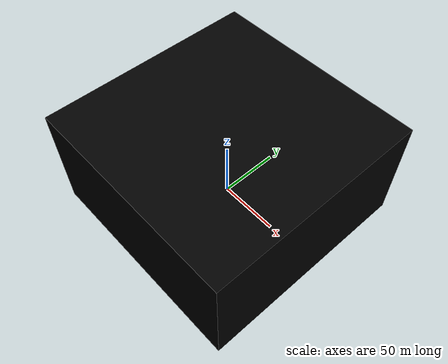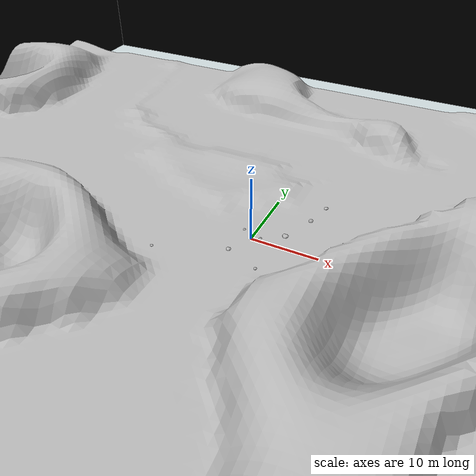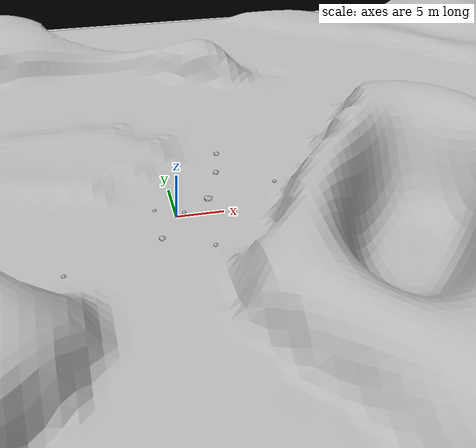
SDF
<?xml version="1.0" ?>
<sdf version='1.9'>
  <world name='lunar_landscape'>

    <scene>
        <ambient>0.4 0.4 0.4 0.4</ambient>          <!-- Has no effect -->
        <background>0.0 0.0 0.0 1.0</background>    <!-- Has no effect -->
        <shadows>1</shadows>                        <!-- Has no effect -->
        <grid>0</grid>
    </scene>

    <!-- Gravity -->
    <!-- Lowers friction and makes robot turn less good -->

    <!-- Physics -->
    <physics name="1ms" type="ignored">
        <max_step_size>0.001</max_step_size>
        <real_time_factor>1.0</real_time_factor>
    </physics>

    <!-- Plugins -->
    <plugin
        filename="gz-sim-physics-system"
        name="gz::sim::systems::Physics">
    </plugin>
    <!-- Allows to use the 'Create" service' -->
    <plugin
        filename="gz-sim-user-commands-system"
        name="gz::sim::systems::UserCommands">
    </plugin>
    <plugin
        filename="gz-sim-scene-broadcaster-system"
        name="gz::sim::systems::SceneBroadcaster">
    </plugin>

    <plugin filename="gz-sim-imu-system"
        name="gz::sim::systems::Imu">
    </plugin>

    <plugin
        filename="gz-sim-sensors-system"
        name="gz::sim::systems::Sensors">
        <render_engine>ogre2</render_engine>
    </plugin>

    <!-- Illumination -->
    <light type="directional" name="sun">
      <cast_shadows>true</cast_shadows>
      <pose>0 0 10 0.9 0 0</pose>
      <diffuse>0.8 0.8 0.8 1</diffuse>
      <specular>0.2 0.2 0.2 1</specular>
      <attenuation>
        <range>1000</range>
        <constant>0.9</constant>
        <linear>0.01</linear>
        <quadratic>0.001</quadratic>
      </attenuation>
      <direction>-0.3 0.3 -0.9</direction>
    </light>

    <!-- Models -->

    <!-- Ground -->
    <model name="lunar_ground_plane">
      <static>true</static>
      <pose>-35 5 0 0 0 0</pose>
      <link name='lunar_ground_plane'>
        <collision name="lunar_ground_plane_collision">
            <pose>0 0 0 0 0 0</pose>
            <geometry>
            <mesh>
                <scale>1 1 1</scale>
                <uri>./meshes/lunar_proto_landscape_v002_flattened.dae</uri>
            </mesh>
            </geometry>
        </collision>
        <visual name='lunar_ground_plane_visual'>
            <pose>0 0 0 0 0 0</pose>
            <geometry>
            <mesh>
                <scale>1 1 1</scale>
                <uri>./meshes/lunar_proto_landscape_v002_flattened.dae</uri>
            </mesh>
            </geometry>
        </visual>
      </link>
    </model>

    <!-- Sky -->
    <model name="black_sky">
      <static>true</static>
      <pose>0 0 -15.0 0 0 0</pose>
      <link name='black_sky_link'>
        <visual name='black_sky_visual'>
            <pose>0 0 0 0 0 0</pose>
            <geometry>
            <mesh>
                <scale>1 1 1</scale>
                <uri>./meshes/black_sky.dae</uri>
            </mesh>
            </geometry>
        </visual>
      </link>
    </model>

    <!-- Rocks -->
    <model name="proto_rock_1">
      <static>true</static>
      <pose>1 1 -0.3 0 0 0</pose>
      <link name='proto_rock_1_link'>
        <visual name='proto_rock_1_visual'>
            <pose>0 0 0 0 0 0</pose>
            <geometry>
            <mesh>
                <scale>0.5 0.5 0.5</scale>
                <uri>./meshes/lunar_proto_rock_1_v001.dae</uri>
            </mesh>
            </geometry>
        </visual>
        <collision name="proto_rock_1_collision">
              <pose>0 0 0 0 0 0</pose>
              <geometry>
              <mesh>
                  <scale>0.5 0.5 0.5</scale>
                  <uri>./meshes/lunar_proto_rock_1_v001.dae</uri>
              </mesh>
              </geometry>
          </collision>
      </link>
    </model>

    <model name="proto_rock_2">
      <static>true</static>
      <pose>-2 2 -0.4 0 0 0</pose>
      <link name='proto_rock_2_link'>
        <visual name='proto_rock_2_visual'>
            <pose>0 0 0 0 0 0</pose>
            <geometry>
            <mesh>
                <scale>0.5 0.5 0.5</scale>
                <uri>./meshes/lunar_proto_rock_1_v001.dae</uri>
            </mesh>
            </geometry>
        </visual>
        <collision name="proto_rock_2_collision">
              <pose>0 0 0 0 0 0</pose>
              <geometry>
              <mesh>
                  <scale>0.5 0.5 0.5</scale>
                  <uri>./meshes/lunar_proto_rock_2_v001.dae</uri>
              </mesh>
              </geometry>
          </collision>
      </link>
    </model>

    <model name="proto_rock_3">
      <static>true</static>
      <pose>3 -5 -0.3 0 0 0</pose>
      <link name='proto_rock_3_link'>
        <visual name='proto_rock_3_visual'>
            <pose>0 0 0 0 0 0</pose>
            <geometry>
            <mesh>
                <scale>0.5 0.5 0.5</scale>
                <uri>./meshes/lunar_proto_rock_1_v001.dae</uri>
            </mesh>
            </geometry>
        </visual>
        <collision name="proto_rock_3_collision">
              <pose>0 0 0 0 0 0</pose>
              <geometry>
              <mesh>
                  <scale>0.5 0.5 0.5</scale>
                  <uri>./meshes/lunar_proto_rock_3_v001.dae</uri>
              </mesh>
              </geometry>
          </collision>
      </link>
    </model>

    <model name="proto_rock_4">
      <static>true</static>
      <pose>12 5 -0.3 0 0 0</pose>
      <link name='proto_rock_4_link'>
        <visual name='proto_rock_4_visual'>
            <pose>0 0 0 0 0 0</pose>
            <geometry>
            <mesh>
                <scale>0.5 0.5 0.5</scale>
                <uri>./meshes/lunar_proto_rock_1_v001.dae</uri>
            </mesh>
            </geometry>
        </visual>
        <collision name="proto_rock_4_collision">
              <pose>0 0 0 0 0 0</pose>
              <geometry>
              <mesh>
                  <scale>0.5 0.5 0.5</scale>
                  <uri>./meshes/lunar_proto_rock_1_v001.dae</uri>
              </mesh>
              </geometry>
          </collision>
      </link>
    </model>

    <model name="proto_rock_5">
      <static>true</static>
      <pose>-12 -7 -0.3 0 0 0</pose>
      <link name='proto_rock_5_link'>
        <visual name='proto_rock_5_visual'>
            <pose>0 0 0 0 0 0</pose>
            <geometry>
            <mesh>
                <scale>0.5 0.5 0.5</scale>
                <uri>./meshes/lunar_proto_rock_2_v001.dae</uri>
            </mesh>
            </geometry>
        </visual>
        <collision name="proto_rock_5_collision">
              <pose>0 0 0 0 0 0</pose>
              <geometry>
              <mesh>
                  <scale>0.5 0.5 0.5</scale>
                  <uri>./meshes/lunar_proto_rock_2_v001.dae</uri>
              </mesh>
              </geometry>
          </collision>
      </link>
    </model>

    <model name="proto_rock_6">
      <static>true</static>
      <pose>7 12 -0.3 0 0 0</pose>
      <link name='proto_rock_6_link'>
        <visual name='proto_rock_6_visual'>
            <pose>0 0 0 0 0 0</pose>
            <geometry>
            <mesh>
                <scale>0.75 0.75 0.75</scale>
                <uri>./meshes/lunar_proto_rock_3_v001.dae</uri>
            </mesh>
            </geometry>
        </visual>
        <collision name="proto_rock_6_collision">
              <pose>0 0 0 0 0 0</pose>
              <geometry>
              <mesh>
                  <scale>0.75 0.75 0.75</scale>
                  <uri>./meshes/lunar_proto_rock_3_v001.dae</uri>
              </mesh>
              </geometry>
          </collision>
      </link>
    </model>

    <model name="proto_rock_7">
      <static>true</static>
      <pose>6 8 -0.3 0 0 0</pose>
      <link name='proto_rock_7_link'>
        <visual name='proto_rock_7_visual'>
            <pose>0 0 0 0 0 0</pose>
            <geometry>
            <mesh>
                <scale>0.75 0.75 0.75</scale>
                <uri>./meshes/lunar_proto_rock_1_v001.dae</uri>
            </mesh>
            </geometry>
        </visual>
        <collision name="proto_rock_7_collision">
              <pose>0 0 0 0 0 0</pose>
              <geometry>
              <mesh>
                  <scale>0.75 0.75 0.75</scale>
                  <uri>./meshes/lunar_proto_rock_1_v001.dae</uri>
              </mesh>
              </geometry>
          </collision>
      </link>
    </model>

    <model name="proto_rock_8">
      <static>true</static>
      <pose>-2 -3 -0.3 0 0 0</pose>
      <link name='proto_rock_8_link'>
        <visual name='proto_rock_8_visual'>
            <pose>0 0 0 0 0 0</pose>
            <geometry>
            <mesh>
                <scale>0.75 0.75 0.75</scale>
                <uri>./meshes/lunar_proto_rock_2_v001.dae</uri>
            </mesh>
            </geometry>
        </visual>
        <collision name="proto_rock_8_collision">
              <pose>0 0 0 0 0 0</pose>
              <geometry>
              <mesh>
                  <scale>0.75 0.75 0.75</scale>
                  <uri>./meshes/lunar_proto_rock_2_v001.dae</uri>
              </mesh>
              </geometry>
          </collision>
      </link>
    </model>

    <model name="proto_rock_9">
      <static>true</static>
      <pose>4 3 -0.25 0 0 0</pose>
      <link name='proto_rock_9_link'>
        <visual name='proto_rock_9_visual'>
            <pose>0 0 0 0 0 0</pose>
            <geometry>
            <mesh>
                <scale>1 1 1</scale>
                <uri>./meshes/lunar_proto_rock_3_v001.dae</uri>
            </mesh>
            </geometry>
        </visual>
        <collision name="proto_rock_9_collision">
              <pose>0 0 0 0 0 0</pose>
              <geometry>
              <mesh>
                  <scale>1 1 1</scale>
                  <uri>./meshes/lunar_proto_rock_3_v001.dae</uri>
              </mesh>
              </geometry>
          </collision>
      </link>
    </model>

    <!-- Robot -->

  </world>
</sdf>
